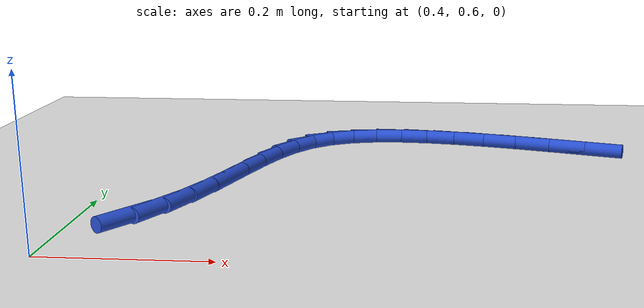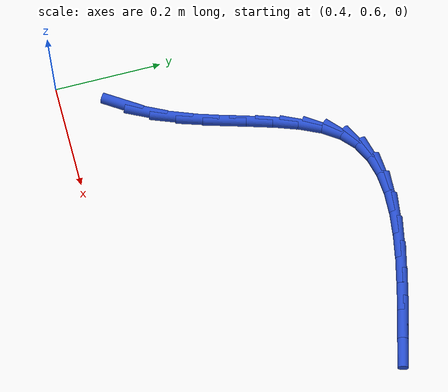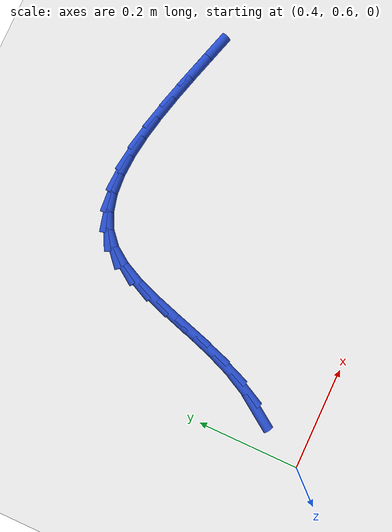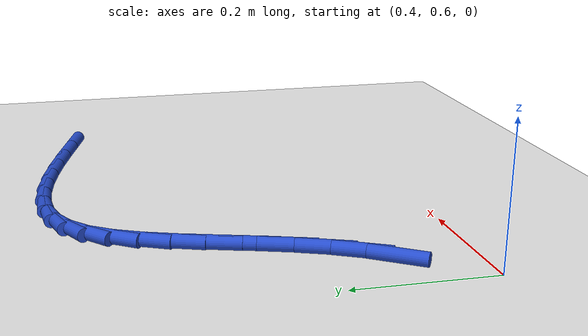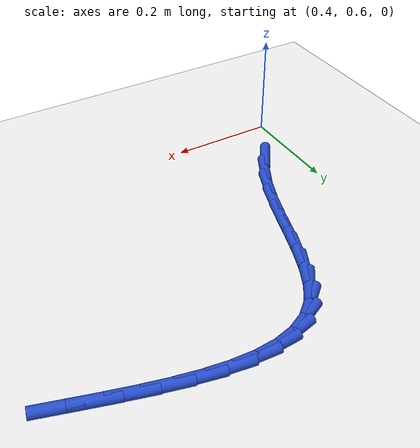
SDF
<sdf version="1.6">
 <world name="default">
  <model name="ground_plane">
   <static>1</static>
   <link name="link">
    <collision name="collision">
     <geometry><plane><normal>0 0 1</normal><size>100 100</size></plane></geometry>
     <surface><friction><ode><mu>100</mu><mu2>50</mu2></ode></friction></surface>
    </collision>
    <visual name="visual">
     <cast_shadows>0</cast_shadows>
     <geometry><plane><normal>0 0 1</normal><size>100 100</size></plane></geometry>
     <material>
      <script><uri>file://media/materials/scripts/gazebo.material</uri><name>Gazebo/WhiteGlow</name></script>
     </material>
    </visual>
   </link>
  </model>
  <model name="line">
   <link name="link_20">
    <pose>0.4663745589855899 0.7117885535969348 0.01 0 1.57 0.9710771711306027</pose>
    <collision name="collision">
     <geometry><cylinder><radius>0.01</radius><length>0.08</length></cylinder></geometry>
    </collision>
    <visual name="visual">
     <material>
      <script><name>Gazebo/Blue</name><uri>file://media/materials/scripts/gazebo.material</uri></script>
     </material>
     <geometry><cylinder><radius>0.01</radius><length>0.08</length></cylinder></geometry>
    </visual>
   </link>
   <link name="link_21">
    <pose>0.4925990650119112 0.7501439179976461 0.01 0 1.57 1.097140017977338</pose>
    <collision name="collision">
     <geometry><cylinder><radius>0.01</radius><length>0.08</length></cylinder></geometry>
    </collision>
    <visual name="visual">
     <material>
      <script><name>Gazebo/Blue</name><uri>file://media/materials/scripts/gazebo.material</uri></script>
     </material>
     <geometry><cylinder><radius>0.01</radius><length>0.08</length></cylinder></geometry>
    </visual>
   </link>
   <link name="link_22">
    <pose>0.5143255672917966 0.7925309546713006 0.01 0 1.57 1.1927491478610073</pose>
    <collision name="collision">
     <geometry><cylinder><radius>0.01</radius><length>0.08</length></cylinder></geometry>
    </collision>
    <visual name="visual">
     <material>
      <script><name>Gazebo/Blue</name><uri>file://media/materials/scripts/gazebo.material</uri></script>
     </material>
     <geometry><cylinder><radius>0.01</radius><length>0.08</length></cylinder></geometry>
    </visual>
   </link>
   <link name="link_23">
    <pose>0.532341952472305 0.8378951228350259 0.01 0 1.57 1.2500849354145764</pose>
    <collision name="collision">
     <geometry><cylinder><radius>0.01</radius><length>0.08</length></cylinder></geometry>
    </collision>
    <visual name="visual">
     <material>
      <script><name>Gazebo/Blue</name><uri>file://media/materials/scripts/gazebo.material</uri></script>
     </material>
     <geometry><cylinder><radius>0.01</radius><length>0.08</length></cylinder></geometry>
    </visual>
   </link>
   <link name="link_24">
    <pose>0.5478875572504575 0.8846939865906275 0.01 0 1.57 1.2733111604714364</pose>
    <collision name="collision">
     <geometry><cylinder><radius>0.01</radius><length>0.08</length></cylinder></geometry>
    </collision>
    <visual name="visual">
     <material>
      <script><name>Gazebo/Blue</name><uri>file://media/materials/scripts/gazebo.material</uri></script>
     </material>
     <geometry><cylinder><radius>0.01</radius><length>0.08</length></cylinder></geometry>
    </visual>
   </link>
   <link name="link_25">
    <pose>0.5622021235116125 0.9313846721411653 0.01 0 1.57 1.2628952254583958</pose>
    <collision name="collision">
     <geometry><cylinder><radius>0.01</radius><length>0.08</length></cylinder></geometry>
    </collision>
    <visual name="visual">
     <material>
      <script><name>Gazebo/Blue</name><uri>file://media/materials/scripts/gazebo.material</uri></script>
     </material>
     <geometry><cylinder><radius>0.01</radius><length>0.08</length></cylinder></geometry>
    </visual>
   </link>
   <link name="link_26">
    <pose>0.576525393141129 0.9764243056896992 0.01 0 1.57 1.2145510840634388</pose>
    <collision name="collision">
     <geometry><cylinder><radius>0.01</radius><length>0.08</length></cylinder></geometry>
    </collision>
    <visual name="visual">
     <material>
      <script><name>Gazebo/Blue</name><uri>file://media/materials/scripts/gazebo.material</uri></script>
     </material>
     <geometry><cylinder><radius>0.01</radius><length>0.08</length></cylinder></geometry>
    </visual>
   </link>
   <link name="link_27">
    <pose>0.5920971080243657 1.0182700134392892 0.01 0 1.57 1.1178670824165902</pose>
    <collision name="collision">
     <geometry><cylinder><radius>0.01</radius><length>0.08</length></cylinder></geometry>
    </collision>
    <visual name="visual">
     <material>
      <script><name>Gazebo/Blue</name><uri>file://media/materials/scripts/gazebo.material</uri></script>
     </material>
     <geometry><cylinder><radius>0.01</radius><length>0.08</length></cylinder></geometry>
    </visual>
   </link>
   <link name="link_28">
    <pose>0.6101570100466811 1.0553789215929952 0.01 0 1.57 0.9555703170470435</pose>
    <collision name="collision">
     <geometry><cylinder><radius>0.01</radius><length>0.08</length></cylinder></geometry>
    </collision>
    <visual name="visual">
     <material>
      <script><name>Gazebo/Blue</name><uri>file://media/materials/scripts/gazebo.material</uri></script>
     </material>
     <geometry><cylinder><radius>0.01</radius><length>0.08</length></cylinder></geometry>
    </visual>
   </link>
   <link name="link_29">
    <pose>0.6319448410934337 1.0862081563538768 0.01 0 1.57 0.7150581808413605</pose>
    <collision name="collision">
     <geometry><cylinder><radius>0.01</radius><length>0.08</length></cylinder></geometry>
    </collision>
    <visual name="visual">
     <material>
      <script><name>Gazebo/Blue</name><uri>file://media/materials/scripts/gazebo.material</uri></script>
     </material>
     <geometry><cylinder><radius>0.01</radius><length>0.08</length></cylinder></geometry>
    </visual>
   </link>
   <link name="link_30">
    <pose>0.6585974692006238 1.1093522926734498 0.01 0 1.57 0.45520966451683714</pose>
    <collision name="collision">
     <geometry><cylinder><radius>0.01</radius><length>0.08</length></cylinder></geometry>
    </collision>
    <visual name="visual">
     <material>
      <script><name>Gazebo/Blue</name><uri>file://media/materials/scripts/gazebo.material</uri></script>
     </material>
     <geometry><cylinder><radius>0.01</radius><length>0.08</length></cylinder></geometry>
    </visual>
   </link>
   <link name="link_31">
    <pose>0.6901942648032124 1.1248188177512326 0.01 0 1.57 0.23521795588506128</pose>
    <collision name="collision">
     <geometry><cylinder><radius>0.01</radius><length>0.08</length></cylinder></geometry>
    </collision>
    <visual name="visual">
     <material>
      <script><name>Gazebo/Blue</name><uri>file://media/materials/scripts/gazebo.material</uri></script>
     </material>
     <geometry><cylinder><radius>0.01</radius><length>0.08</length></cylinder></geometry>
    </visual>
   </link>
   <link name="link_32">
    <pose>0.7261927878281897 1.1334460137519367 0.01 0 1.57 0.06607158520097124</pose>
    <collision name="collision">
     <geometry><cylinder><radius>0.01</radius><length>0.08</length></cylinder></geometry>
    </collision>
    <visual name="visual">
     <material>
      <script><name>Gazebo/Blue</name><uri>file://media/materials/scripts/gazebo.material</uri></script>
     </material>
     <geometry><cylinder><radius>0.01</radius><length>0.08</length></cylinder></geometry>
    </visual>
   </link>
   <link name="link_33">
    <pose>0.7660426407341805 1.1360827947362753 0.01 0 1.57 -0.057980696551498186</pose>
    <collision name="collision">
     <geometry><cylinder><radius>0.01</radius><length>0.08</length></cylinder></geometry>
    </collision>
    <visual name="visual">
     <material>
      <script><name>Gazebo/Blue</name><uri>file://media/materials/scripts/gazebo.material</uri></script>
     </material>
     <geometry><cylinder><radius>0.01</radius><length>0.08</length></cylinder></geometry>
    </visual>
   </link>
   <link name="link_34">
    <pose>0.8091934259798103 1.1335780747649624 0.01 0 1.57 -0.14701677366296806</pose>
    <collision name="collision">
     <geometry><cylinder><radius>0.01</radius><length>0.08</length></cylinder></geometry>
    </collision>
    <visual name="visual">
     <material>
      <script><name>Gazebo/Blue</name><uri>file://media/materials/scripts/gazebo.material</uri></script>
     </material>
     <geometry><cylinder><radius>0.01</radius><length>0.08</length></cylinder></geometry>
    </visual>
   </link>
   <link name="link_35">
    <pose>0.855094746023704 1.126780767898712 0.01 0 1.57 -0.20977164841910786</pose>
    <collision name="collision">
     <geometry><cylinder><radius>0.01</radius><length>0.08</length></cylinder></geometry>
    </collision>
    <visual name="visual">
     <material>
      <script><name>Gazebo/Blue</name><uri>file://media/materials/scripts/gazebo.material</uri></script>
     </material>
     <geometry><cylinder><radius>0.01</radius><length>0.08</length></cylinder></geometry>
    </visual>
   </link>
   <link name="link_36">
    <pose>0.9031962033244869 1.1165397881982373 0.01 0 1.57 -0.2524924611247231</pose>
    <collision name="collision">
     <geometry><cylinder><radius>0.01</radius><length>0.08</length></cylinder></geometry>
    </collision>
    <visual name="visual">
     <material>
      <script><name>Gazebo/Blue</name><uri>file://media/materials/scripts/gazebo.material</uri></script>
     </material>
     <geometry><cylinder><radius>0.01</radius><length>0.08</length></cylinder></geometry>
    </visual>
   </link>
   <link name="link_37">
    <pose>0.9529474003407836 1.1037040497242516 0.01 0 1.57 -0.27926041604706453</pose>
    <collision name="collision">
     <geometry><cylinder><radius>0.01</radius><length>0.08</length></cylinder></geometry>
    </collision>
    <visual name="visual">
     <material>
      <script><name>Gazebo/Blue</name><uri>file://media/materials/scripts/gazebo.material</uri></script>
     </material>
     <geometry><cylinder><radius>0.01</radius><length>0.08</length></cylinder></geometry>
    </visual>
   </link>
   <link name="link_38">
    <pose>1.00379793953122 1.0891224665374692 0.01 0 1.57 -0.292503644766396</pose>
    <collision name="collision">
     <geometry><cylinder><radius>0.01</radius><length>0.08</length></cylinder></geometry>
    </collision>
    <visual name="visual">
     <material>
      <script><name>Gazebo/Blue</name><uri>file://media/materials/scripts/gazebo.material</uri></script>
     </material>
     <geometry><cylinder><radius>0.01</radius><length>0.08</length></cylinder></geometry>
    </visual>
   </link>
   <link name="link_39">
    <pose>1.0551974233544206 1.0736439526986035 0.01 0 1.57 -0.2933677593075031</pose>
    <collision name="collision">
     <geometry><cylinder><radius>0.01</radius><length>0.08</length></cylinder></geometry>
    </collision>
    <visual name="visual">
     <material>
      <script><name>Gazebo/Blue</name><uri>file://media/materials/scripts/gazebo.material</uri></script>
     </material>
     <geometry><cylinder><radius>0.01</radius><length>0.08</length></cylinder></geometry>
    </visual>
   </link>
  </model>
 </world>
</sdf>
